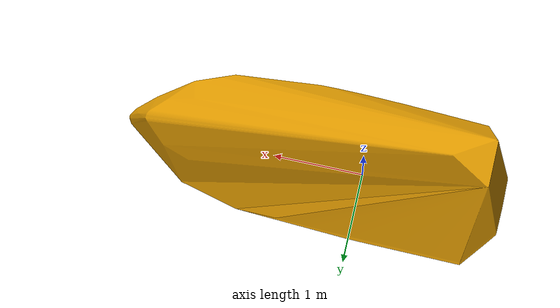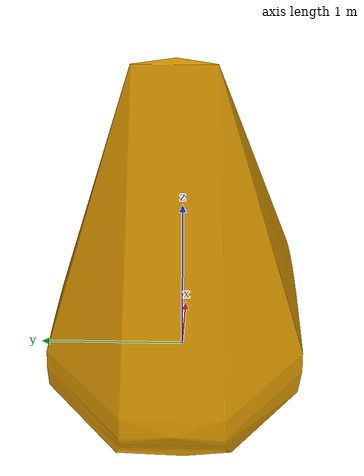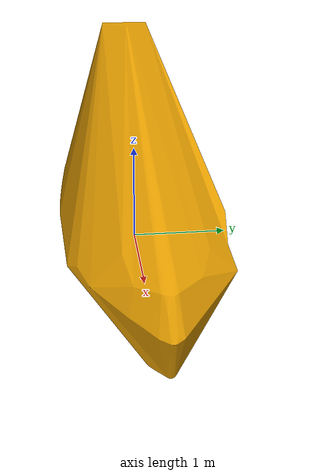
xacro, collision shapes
<?xml version="1.0"?>
<robot xmlns:xacro="http://ros.org/wiki/xacro" name="ben">
  <xacro:arg name="namespace" default="ben"/>
  <xacro:property name="namespace" value="$(arg namespace)" scope="global" />

  <xacro:property name="hull_mass" value="883" />
  <xacro:property name="cg_x" value="-0.911" />
  <xacro:property name="cg_y" value="-0.018" />
  <xacro:property name="cg_z" value="-0.346" />
  <xacro:property name="ixx" value="212.9" />
  <xacro:property name="ixy" value="0.0" />
  <xacro:property name="ixz" value="0.0" />
  <xacro:property name="iyy" value="1308.7" />
  <xacro:property name="iyz" value="0.0" />
  <xacro:property name="izz" value="1463.2" />

  <xacro:property name="mru_x" value="0.911" />
  <xacro:property name="mru_y" value="0.018" />
  <xacro:property name="mru_z" value="0.532" />

  <!-- Lidar (hull-mounted, relative to MRU) -->
  <xacro:property name="lidar_x" value="-1.98" />
  <xacro:property name="lidar_y" value="0.0" />
  <xacro:property name="lidar_z" value="1.403" />

  <!-- Radar (hull-mounted, relative to MRU) -->
  <xacro:property name="radar_x" value="-1.8" />
  <xacro:property name="radar_y" value="0.0" />
  <xacro:property name="radar_z" value="1.3" />

  <!-- Panoramic camera array (hull-mounted, relative to MRU) -->
  <xacro:property name="pano_x" value="-1.98" />
  <xacro:property name="pano_y" value="0.0" />
  <xacro:property name="pano_z" value="1.266" />

  <!-- Forward camera (hull-mounted, relative to MRU) -->
  <xacro:property name="forward_camera_x" value="-1.307" />
  <xacro:property name="forward_camera_y" value="0.1" />
  <xacro:property name="forward_camera_z" value="0.742" />

  <!-- MBES (hull-mounted, on retractable ram, relative to MRU) -->
  <xacro:property name="mbes_x" value="-0.5" />
  <xacro:property name="mbes_y" value="0.0" />
  <xacro:property name="mbes_z" value="-0.4" />

  <xacro:property name="garmin_sidescan_x" value="${mbes_x + 0.5}" />
  <xacro:property name="garmin_sidescan_y" value="${mbes_y}" />
  <xacro:property name="garmin_sidescan_z" value="${mbes_z - 0.01}" />

  <!-- GPS (POSMV-mounted, relative to motion_sensor) -->
  <xacro:property name="gps_x" value="-0.953" />
  <xacro:property name="gps_y" value="0.103" />
  <xacro:property name="gps_z" value="0.628" />

  <!-- Heading sensor at motion_sensor origin (no offset) -->

  <!-- Jetdrive (stern, hull-mounted, relative to MRU) -->
  <xacro:property name="jetdrive_x" value="-1.1" />
  <xacro:property name="jetdrive_y" value="0.0" />
  <xacro:property name="jetdrive_z" value="-0.1" />

  <!-- ============================================================
       End of survey offsets
       ============================================================ -->

  <!-- base_link: hull frame at waterline reference.
       All hull-mounted sensors and the visual/collision mesh attach here. -->
  <link name="${namespace}/base_link">
    <visual>
      <!-- Mesh origin is at the POSMV MRU location -->
      <origin xyz="${mru_x} ${mru_y} ${mru_z}" rpy="0 0 0"/>
      <geometry>
        <mesh filename="package://ben_description/models/meshes/BEN_shell.dae"/>
      </geometry>
    </visual>

    <collision>
      <origin xyz="${mru_x} ${mru_y} ${mru_z}" rpy="0 0 0"/>
      <geometry>
        <mesh filename="package://ben_description/models/meshes/BEN_shell_collision.stl"/>
      </geometry>
    </collision>

    <inertial>
      <!-- CG in base_link frame = MRU offset + CG relative to MRU -->
      <origin xyz="${mru_x + cg_x} ${mru_y + cg_y} ${mru_z + cg_z}" rpy="0 0 0"/>
      <mass value="${hull_mass}"/>
      <inertia
        ixx="${ixx}" ixy="${ixy}" ixz="${ixz}"
        iyy="${iyy}" iyz="${iyz}"
        izz="${izz}"/>
    </inertial>
  </link>

  <!-- motion_sensor: POSMV MRU physical reference frame.
       GPS and heading sensor are parented here. -->
  <joint name="${namespace}/base_link_to_motion_sensor_joint" type="fixed">
    <parent link="${namespace}/base_link"/>
    <child link="${namespace}/motion_sensor"/>
    <origin xyz="${mru_x} ${mru_y} ${mru_z}" rpy="0 0 0"/>
  </joint>

  <link name="${namespace}/motion_sensor">
    <inertial>
      <!-- Near-zero mass: sensor link is a reference frame only.
           Total displacement (883 kg) is accounted for in hull_mass. -->
      <mass value="0.01"/>
      <inertia ixx="0.0001" ixy="0.0" ixz="0.0" iyy="0.0001" iyz="0.0" izz="0.0001"/>
    </inertial>
  </link>

  <!-- Hull-mounted sensors (positions converted from MRU-relative to base_link-relative) -->

  <xacro:include filename="$(find ben_description)/urdf/sensors/lidar.xacro" />
  <xacro:ben_lidar name="lidar"
    x="${mru_x + lidar_x}" y="${mru_y + lidar_y}" z="${mru_z + lidar_z}"/>

  <xacro:include filename="$(find ben_description)/urdf/sensors/radar.xacro" />
  <xacro:ben_radar name="radar"
    x="${mru_x + radar_x}" y="${mru_y + radar_y}" z="${mru_z + radar_z}"/>

  <xacro:include filename="$(find ben_description)/urdf/sensors/pano_array.xacro" />
  <xacro:pano_array name="pano"
    x="${mru_x + pano_x}" y="${mru_y + pano_y}" z="${mru_z + pano_z}"/>

  <xacro:include filename="$(find ben_description)/urdf/sensors/forward_camera.xacro" />
  <xacro:forward_camera name="forward_camera"
    x="${mru_x + forward_camera_x}" y="${mru_y + forward_camera_y}" z="${mru_z + forward_camera_z}"/>

  <xacro:include filename="$(find ben_description)/urdf/sensors/mbes.xacro" />
  <xacro:ben_mbes name="mbes"
    x="${mru_x + mbes_x}" y="${mru_y + mbes_y}" z="${mru_z + mbes_z}"/>

  <xacro:include filename="$(find ben_description)/urdf/sensors/garmin_sidescan.xacro" />
  <xacro:ben_garmin_sidescan name="garmin_sidescan"
    x="${mru_x + garmin_sidescan_x}" y="${mru_y + garmin_sidescan_y}"
    z="${mru_z + garmin_sidescan_z}"/>

  <!-- POSMV-mounted sensors (positions relative to motion_sensor) -->

  <xacro:include filename="$(find ben_description)/urdf/sensors/oem_gps.xacro" />
  <xacro:oem_gps name="gps" x="${gps_x}" y="${gps_y}" z="${gps_z}"/>

  <xacro:include filename="$(find ben_description)/urdf/sensors/oem_heading_sensor.xacro" />
  <xacro:oem_heading_sensor name="heading"/>

  <!-- Jetdrive (Alamarin-Jet AJ 160 waterjet) -->

  <xacro:include filename="$(find ben_description)/urdf/jetdrive.xacro" />
  <xacro:ben_jetdrive name="jetdrive"
    x="${mru_x + jetdrive_x}" y="${mru_y + jetdrive_y}" z="${mru_z + jetdrive_z}"/>

</robot>

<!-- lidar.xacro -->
<robot xmlns:xacro="http://ros.org/wiki/xacro">

  <xacro:macro name="ben_lidar" params="name
                                        x:=0.7 y:=0 z:=1.8
                                        R:=0 P:=0 Y:=0">

    <link name="${namespace}/${name}">
      <visual name="${name}_visual">
        <origin xyz="0 0 0" rpy="0 0 0"/>
        <geometry>
          <cylinder radius="0.055" length="0.075"/>
        </geometry>
      </visual>
      <collision name="${name}_collision">
        <geometry>
          <cylinder radius="0.055" length="0.075"/>
        </geometry>
      </collision>
      <inertial>
        <mass value="0.01"/>
        <inertia
          ixx="0.0001"
          iyy="0.0001"
          izz="0.0001"
          ixy="0"
          ixz="0"
          iyz="0"/>
      </inertial>
    </link>

    <joint name="${namespace}/base_link_to_${name}_joint" type="fixed">
      <origin xyz="${x} ${y} ${z}" rpy="${R} ${P} ${Y}" />
      <parent link="${namespace}/base_link" />
      <child link="${namespace}/${name}" />
    </joint>
  </xacro:macro>
</robot>

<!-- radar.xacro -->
<robot xmlns:xacro="http://ros.org/wiki/xacro">

  <xacro:macro name="ben_radar" params="name
                                        x:=0.7 y:=0 z:=1.5
                                        R:=0 P:=0 Y:=0">

    <!-- TF frame only — hull mesh already includes radar dome visual. -->
    <link name="${namespace}/${name}">
      <inertial>
        <mass value="0.01"/>
        <inertia
          ixx="0.0001"
          iyy="0.0001"
          izz="0.0001"
          ixy="0"
          ixz="0"
          iyz="0"/>
      </inertial>
    </link>

    <joint name="${namespace}/base_link_to_${name}_joint" type="fixed">
      <origin xyz="${x} ${y} ${z}" rpy="${R} ${P} ${Y}" />
      <parent link="${namespace}/base_link" />
      <child link="${namespace}/${name}" />
    </joint>
  </xacro:macro>
</robot>

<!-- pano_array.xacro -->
<robot xmlns:xacro="http://ros.org/wiki/xacro">
  <xacro:macro name="pano_array" params="name x:=0.0 y:=0 z:=0.0 R:=0 P:=0 Y:=0">

    <link name="${namespace}/${name}">
      <visual name="${name}_base_visual">
        <origin xyz="0 0 0" rpy="0 0 0"/>
        <geometry>
          <mesh filename="package://ben_description/models/meshes/panoramic_camera_housing.dae"/>
        </geometry>
      </visual>
      <collision name="${name}_collision">
        <origin xyz="0 0 0.05" rpy="0 0 0"/>
        <geometry>
          <cylinder radius="0.15" length="0.1"/>
        </geometry>
      </collision>
      <inertial>
        <mass value="0.01"/>
        <inertia
          ixx="0.0001"
          iyy="0.0001"
          izz="0.0001"
          ixy="0"
          ixz="0"
          iyz="0"/>
      </inertial>
    </link>

    <joint name="${namespace}/base_link_to_${name}_joint" type="fixed">
      <origin xyz="${x} ${y} ${z}" rpy="${R} ${P} ${Y}" />
      <parent link="${namespace}/base_link" />
      <child link="${namespace}/${name}" />
    </joint>

    <xacro:include filename="$(find ben_description)/urdf/sensors/pano_camera.xacro" />

    <xacro:macro name="loop" params="i">
      <xacro:pano_camera name="${name}" number="${i+1}" x="0.08" z="0.05" Y="${-radians(i*60)}" />
      <xacro:if value="${i}">
        <xacro:loop i="${i-1}" />
      </xacro:if>
    </xacro:macro>

    <xacro:loop i="5" />

  </xacro:macro>
</robot>

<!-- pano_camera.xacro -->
<robot xmlns:xacro="http://ros.org/wiki/xacro">
  <xacro:macro name="pano_camera" params="name number x:=0.1 y:=0 z:=0 R:=0 P:=0 Y:=0">

    <!-- Monocular Camera -->
    <link name="${namespace}/${name}_${number}">
      <visual name="${name}_${number}_visual">
        <origin xyz="0.018 0 0" rpy="0 ${pi/2} 0"/>
        <geometry>
          <cylinder radius="0.015" length="0.042"/>
        </geometry>
      </visual>
      <collision name="${name}_lens_collision">
        <origin xyz="0.018 0 0" rpy="0 ${pi/2} 0"/>
        <geometry>
          <cylinder radius="0.015" length="0.042"/>
        </geometry>
      </collision>
      <!-- Near-zero inertia: sensor mass is accounted for in hull_mass -->
      <inertial>
        <mass value="0.01"/>
        <inertia
          ixx="0.0001"
          iyy="0.0001"
          izz="0.0001"
          ixy="0"
          ixz="0"
          iyz="0"/>
      </inertial>
    </link>

    <!-- Optical frame oriented in camera convention (ENU -> camera) -->
    <link name="${namespace}/${name}_${number}_optical">
    </link>

    <joint name="${namespace}/${name}_to_${name}_${number}_joint" type="fixed">
      <origin xyz="${x*cos(Y) - y*sin(Y)} ${x*sin(Y) + y*cos(Y)} ${z}" rpy="${R} ${P} ${Y}" />
      <parent link="${namespace}/${name}" />
      <child link="${namespace}/${name}_${number}" />
    </joint>

    <!-- Camera to optical frame joint -->
    <joint name="${namespace}/${name}_${number}_to_${name}_${number}_optical_joint" type="fixed">
      <origin xyz="0 0 0" rpy="${-pi/2} 0 ${-pi/2}" />
      <parent link="${namespace}/${name}_${number}" />
      <child link="${namespace}/${name}_${number}_optical" />
    </joint>

    <!-- Reference plane for rviz camera projection -->
    <link name="${namespace}/${name}_${number}_optical_rviz_mesh">
    </link>

    <joint name="${namespace}/${name}_${number}_optical_to_${name}_${number}_optical_rviz_mesh_joint" type="fixed">
      <origin xyz="0 0 10" rpy="0 0 0" />
      <parent link="${namespace}/${name}_${number}_optical" />
      <child link="${namespace}/${name}_${number}_optical_rviz_mesh" />
    </joint>

  </xacro:macro>
</robot>

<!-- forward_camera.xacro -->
<robot xmlns:xacro="http://ros.org/wiki/xacro">
  <xacro:macro name="forward_camera" params="name x:=0 y:=0 z:=0 R:=0 P:=0 Y:=0">

    <!-- Monocular Camera -->
    <link name="${namespace}/${name}">
      <visual name="${name}_visual">
        <origin xyz="-0.083 0 0" rpy="${pi/2} 0 ${pi/2}"/>
        <geometry>
          <mesh filename="package://ben_description/models/meshes/forward_camera.dae"/>
        </geometry>
      </visual>
      <collision name="${name}_lens_collision">
        <origin xyz="0.018 0 0" rpy="0 ${pi/2} 0"/>
        <geometry>
          <cylinder radius="0.015" length="0.042"/>
        </geometry>
      </collision>
      <collision name="${name}_box_collision">
        <origin xyz="-0.0205 0 0" rpy="0 0 0"/>
        <geometry>
          <box size="0.036 0.03 0.03"/>
        </geometry>
      </collision>
      <!-- Near-zero inertia: sensor mass is accounted for in hull_mass -->
      <inertial>
        <mass value="0.01"/>
        <inertia
          ixx="0.0001"
          iyy="0.0001"
          izz="0.0001"
          ixy="0"
          ixz="0"
          iyz="0"/>
      </inertial>
    </link>

    <!-- Define a link for the optical frame.  This will match the sensor frame and
         be oriented in the camera convention. -->
    <link name="${namespace}/${name}_optical">
    </link>

    <joint name="${namespace}/base_link_to_${name}_joint" type="fixed">
      <origin xyz="${x} ${y} ${z}" rpy="${R} ${P} ${Y}" />
      <parent link="${namespace}/base_link" />
      <child link="${namespace}/${name}" />
    </joint>

    <!-- Camera to optical frame joint.  This is oriented to convert between ENU
         and camera conventions -->
    <joint name="${namespace}/${name}_to_${name}_optical_joint" type="fixed">
      <origin xyz="0 0 0" rpy="${-pi/2} 0 ${-pi/2}" />
      <parent link="${namespace}/${name}" />
      <child link="${namespace}/${name}_optical" />
    </joint>

  </xacro:macro>
</robot>

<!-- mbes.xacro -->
<robot xmlns:xacro="http://ros.org/wiki/xacro">

  <!-- Kongsberg EM 2040P MBES on retractable ram.
       Travel = max_draft(630mm) - hull_draft(404mm) = 226mm downward.
       No visual/collision — hull mesh includes the ram housing. -->
  <xacro:macro name="ben_mbes" params="name x:=0 y:=0 z:=0">

    <!-- Ram — prismatic joint for vertical travel (0 to -0.226 m) -->
    <link name="${namespace}/${name}_ram">
      <inertial>
        <mass value="0.01"/>
        <inertia ixx="0.0001" ixy="0.0" ixz="0.0"
                 iyy="0.0001" iyz="0.0" izz="0.0001"/>
      </inertial>
    </link>

    <joint name="${namespace}/${name}_ram_joint" type="prismatic">
      <origin xyz="${x} ${y} ${z}" rpy="0 0 0"/>
      <parent link="${namespace}/base_link"/>
      <child link="${namespace}/${name}_ram"/>
      <axis xyz="0 0 1"/>
      <limit lower="-0.226" upper="0.0" effort="100" velocity="0.05"/>
    </joint>

    <!-- MBES transducer — TF frame only (like radar) -->
    <link name="${namespace}/${name}">
      <inertial>
        <mass value="0.01"/>
        <inertia ixx="0.0001" ixy="0.0" ixz="0.0"
                 iyy="0.0001" iyz="0.0" izz="0.0001"/>
      </inertial>
    </link>

    <joint name="${namespace}/${name}_joint" type="fixed">
      <origin xyz="0 0 0" rpy="${radians(180)} 0 0"/>
      <parent link="${namespace}/${name}_ram"/>
      <child link="${namespace}/${name}"/>
    </joint>

  </xacro:macro>
</robot>

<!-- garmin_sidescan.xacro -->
<robot xmlns:xacro="http://ros.org/wiki/xacro">

  <xacro:macro name="ben_garmin_sidescan" params="name x:=0 y:=0 z:=0">

    <!-- Mount frame, aligned with base_link (X fwd, Y port, Z up). -->
    <link name="${namespace}/${name}">
      <inertial>
        <mass value="0.01"/>
        <inertia ixx="0.0001" ixy="0.0" ixz="0.0"
                 iyy="0.0001" iyz="0.0" izz="0.0001"/>
      </inertial>
    </link>

    <joint name="${namespace}/base_link_to_${name}_joint" type="fixed">
      <origin xyz="${x} ${y} ${z}" rpy="0 0 0"/>
      <parent link="${namespace}/base_link"/>
      <child link="${namespace}/${name}"/>
    </joint>

    <!-- Down-look (water-column) beam: +Z down. -->
    <link name="${namespace}/${name}_down">
      <inertial>
        <mass value="0.01"/>
        <inertia ixx="0.0001" ixy="0.0" ixz="0.0"
                 iyy="0.0001" iyz="0.0" izz="0.0001"/>
      </inertial>
    </link>
    <joint name="${namespace}/${name}_to_${name}_down_joint" type="fixed">
      <origin xyz="0 0 0" rpy="${radians(180)} 0 0"/>
      <parent link="${namespace}/${name}"/>
      <child link="${namespace}/${name}_down"/>
    </joint>

    <!-- Port side-scan beam: +Z to port (+Y). -->
    <link name="${namespace}/${name}_port">
      <inertial>
        <mass value="0.01"/>
        <inertia ixx="0.0001" ixy="0.0" ixz="0.0"
                 iyy="0.0001" iyz="0.0" izz="0.0001"/>
      </inertial>
    </link>
    <joint name="${namespace}/${name}_to_${name}_port_joint" type="fixed">
      <origin xyz="0 0 0" rpy="${radians(-90)} 0 0"/>
      <parent link="${namespace}/${name}"/>
      <child link="${namespace}/${name}_port"/>
    </joint>

    <!-- Starboard side-scan beam: +Z to starboard (-Y). -->
    <link name="${namespace}/${name}_starboard">
      <inertial>
        <mass value="0.01"/>
        <inertia ixx="0.0001" ixy="0.0" ixz="0.0"
                 iyy="0.0001" iyz="0.0" izz="0.0001"/>
      </inertial>
    </link>
    <joint name="${namespace}/${name}_to_${name}_starboard_joint" type="fixed">
      <origin xyz="0 0 0" rpy="${radians(90)} 0 0"/>
      <parent link="${namespace}/${name}"/>
      <child link="${namespace}/${name}_starboard"/>
    </joint>

  </xacro:macro>
</robot>

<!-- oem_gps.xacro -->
<robot xmlns:xacro="http://ros.org/wiki/xacro">
  <xacro:macro name="oem_gps" params="name:=gps x:=0 y:=0 z:=0 R:=0 P:=0 Y:=0">

    <link name="${namespace}/${name}">
      <visual name="${name}_visual">
        <origin xyz="0.001 0 -0.01" rpy="${radians(90)} 0 ${radians(90)}"/>
        <geometry>
          <mesh filename="package://ben_description/models/meshes/garmin_gps.dae"/>
        </geometry>
      </visual>
      <collision name="${name}_collision">
        <origin xyz="0 0 0" rpy="0 0 0"/>
        <geometry>
          <cylinder radius="0.046" length="0.05"/>
        </geometry>
      </collision>

      <inertial>
        <mass value="0.01"/>
        <inertia ixx="0.0001" ixy="0.0" ixz="0.0" iyy="0.0001" iyz="0.0" izz="0.0001"/>
      </inertial>
    </link>

    <joint name="${namespace}/${name}_joint" type="fixed">
      <parent link="${namespace}/motion_sensor" />
      <child link="${namespace}/${name}" />
      <origin xyz="${x} ${y} ${z}" rpy="${R} ${P} ${Y}" />
    </joint>

  </xacro:macro>
</robot>

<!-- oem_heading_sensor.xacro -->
<robot xmlns:xacro="http://ros.org/wiki/xacro">
  <xacro:macro name="oem_heading_sensor" params="name:=heading">
    <link name="${namespace}/${name}">
      <inertial>
        <mass value="0.01"/>
        <inertia ixx="0.0001" ixy="0.0" ixz="0.0" iyy="0.0001" iyz="0.0" izz="0.0001"/>
      </inertial>
    </link>
    <joint name="${namespace}/${name}_joint" type="fixed">
      <parent link="${namespace}/motion_sensor"/>
      <child link="${namespace}/${name}"/>
    </joint>
  </xacro:macro>
</robot>

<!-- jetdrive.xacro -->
<robot xmlns:xacro="http://ros.org/wiki/xacro">

  <!-- Alamarin-Jet AJ 160 waterjet model.
       Internal waterjet with deflector/bucket for steering and reverse.
       No visual/collision — the jet is inside the hull. -->
  <xacro:macro name="ben_jetdrive" params="name x:=0 y:=0 z:=0">

    <!-- Mount point (fixed to hull, no visual/collision) -->
    <link name="${namespace}/${name}_mount">
      <inertial>
        <mass value="0.01"/>
        <inertia ixx="0.0001" ixy="0.0" ixz="0.0"
                 iyy="0.0001" iyz="0.0" izz="0.0001"/>
      </inertial>
    </link>

    <joint name="${namespace}/${name}_mount_joint" type="fixed">
      <origin xyz="${x} ${y} ${z}" rpy="0 0 0"/>
      <parent link="${namespace}/base_link"/>
      <child link="${namespace}/${name}_mount"/>
    </joint>

    <!-- Deflector/bucket — redirects jet for steering (yaw ±30°) -->
    <link name="${namespace}/${name}_deflector">
      <inertial>
        <mass value="0.01"/>
        <inertia ixx="0.0001" ixy="0.0" ixz="0.0"
                 iyy="0.0001" iyz="0.0" izz="0.0001"/>
      </inertial>
    </link>

    <joint name="${namespace}/${name}_deflector_joint" type="revolute">
      <origin xyz="0 0 0" rpy="0 0 0"/>
      <parent link="${namespace}/${name}_mount"/>
      <child link="${namespace}/${name}_deflector"/>
      <axis xyz="0 0 1"/>
      <limit lower="${-radians(30)}" upper="${radians(30)}" effort="100" velocity="1.0"/>
    </joint>

    <!-- Impeller — spins to generate thrust force -->
    <link name="${namespace}/${name}_impeller">
      <inertial>
        <mass value="0.01"/>
        <inertia ixx="0.0001" ixy="0.0" ixz="0.0"
                 iyy="0.0001" iyz="0.0" izz="0.0001"/>
      </inertial>
    </link>

    <joint name="${namespace}/${name}_impeller_joint" type="continuous">
      <origin xyz="0 0 0" rpy="0 0 0"/>
      <parent link="${namespace}/${name}_deflector"/>
      <child link="${namespace}/${name}_impeller"/>
      <axis xyz="1 0 0"/>
      <limit effort="100" velocity="100"/>
      <dynamics friction="0.05" damping="0.05"/>
    </joint>

  </xacro:macro>
</robot>
